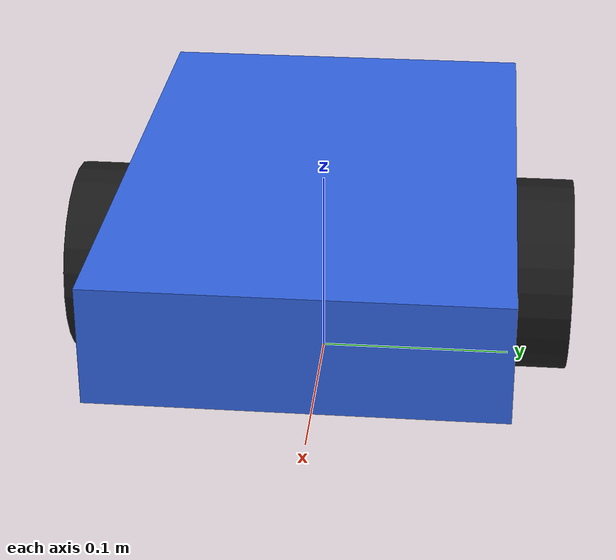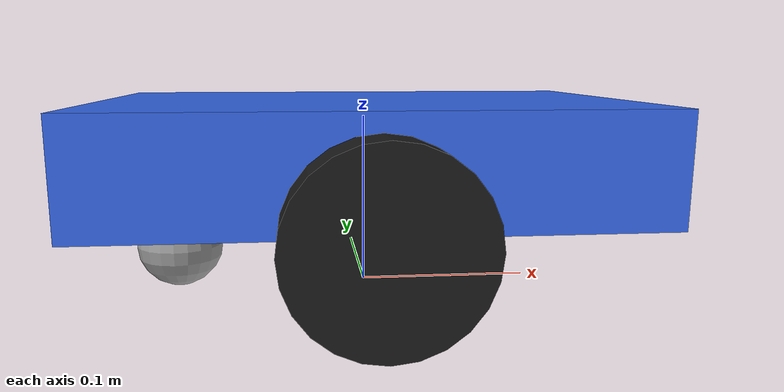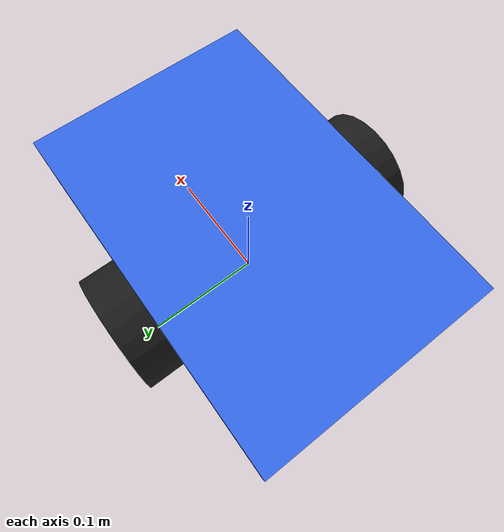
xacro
<?xml version="1.0"?>
<robot name="swarm_bot" xmlns:xacro="http://www.ros.org/wiki/xacro">

  <xacro:property name="base_length" value="0.30"/>
  <xacro:property name="base_width" value="0.20"/>
  <xacro:property name="base_height" value="0.06"/>

  <xacro:property name="wheel_radius" value="0.05"/>
  <xacro:property name="wheel_width" value="0.03"/>
  <xacro:property name="wheel_y_offset" value="0.115"/>
  <xacro:property name="wheel_x_offset" value="0.0"/>

  <xacro:property name="caster_radius" value="0.025"/>
  <xacro:property name="caster_x_offset" value="-0.11"/>

  <material name="blue">
    <color rgba="0.2 0.4 0.9 1.0"/>
  </material>

  <material name="black">
    <color rgba="0.1 0.1 0.1 1.0"/>
  </material>

  <material name="gray">
    <color rgba="0.6 0.6 0.6 1.0"/>
  </material>

  <link name="base_footprint"/>

  <link name="base_link">
    <visual>
      <origin xyz="0 0 ${wheel_radius + base_height/2}" rpy="0 0 0"/>
      <geometry>
        <box size="${base_length} ${base_width} ${base_height}"/>
      </geometry>
      <material name="blue"/>
    </visual>
    <collision>
      <origin xyz="0 0 ${wheel_radius + base_height/2}" rpy="0 0 0"/>
      <geometry>
        <box size="${base_length} ${base_width} ${base_height}"/>
      </geometry>
    </collision>
    <inertial>
      <origin xyz="0 0 ${wheel_radius + base_height/2}" rpy="0 0 0"/>
      <mass value="2.0"/>
      <inertia ixx="0.02" ixy="0.0" ixz="0.0" iyy="0.03" iyz="0.0" izz="0.04"/>
    </inertial>
  </link>

  <joint name="base_footprint_joint" type="fixed">
    <parent link="base_footprint"/>
    <child link="base_link"/>
    <origin xyz="0 0 0" rpy="0 0 0"/>
  </joint>

  <link name="left_wheel">
    <visual>
      <origin xyz="0 0 0" rpy="1.5708 0 0"/>
      <geometry>
        <cylinder radius="${wheel_radius}" length="${wheel_width}"/>
      </geometry>
      <material name="black"/>
    </visual>
    <collision>
      <origin xyz="0 0 0" rpy="1.5708 0 0"/>
      <geometry>
        <cylinder radius="${wheel_radius}" length="${wheel_width}"/>
      </geometry>
    </collision>
    <inertial>
      <mass value="0.2"/>
      <inertia ixx="0.0005" ixy="0.0" ixz="0.0" iyy="0.0005" iyz="0.0" izz="0.0005"/>
    </inertial>
  </link>

  <link name="right_wheel">
    <visual>
      <origin xyz="0 0 0" rpy="1.5708 0 0"/>
      <geometry>
        <cylinder radius="${wheel_radius}" length="${wheel_width}"/>
      </geometry>
      <material name="black"/>
    </visual>
    <collision>
      <origin xyz="0 0 0" rpy="1.5708 0 0"/>
      <geometry>
        <cylinder radius="${wheel_radius}" length="${wheel_width}"/>
      </geometry>
    </collision>
    <inertial>
      <mass value="0.2"/>
      <inertia ixx="0.0005" ixy="0.0" ixz="0.0" iyy="0.0005" iyz="0.0" izz="0.0005"/>
    </inertial>
  </link>

  <joint name="left_wheel_joint" type="continuous">
    <parent link="base_link"/>
    <child link="left_wheel"/>
    <origin xyz="${wheel_x_offset} ${wheel_y_offset} ${wheel_radius}" rpy="0 0 0"/>
    <axis xyz="0 1 0"/>
  </joint>

  <joint name="right_wheel_joint" type="continuous">
    <parent link="base_link"/>
    <child link="right_wheel"/>
    <origin xyz="${wheel_x_offset} -${wheel_y_offset} ${wheel_radius}" rpy="0 0 0"/>
    <axis xyz="0 1 0"/>
  </joint>

  <link name="rear_caster">
    <visual>
      <origin xyz="0 0 0" rpy="0 0 0"/>
      <geometry>
        <sphere radius="${caster_radius}"/>
      </geometry>
      <material name="gray"/>
    </visual>
    <collision>
      <origin xyz="0 0 0" rpy="0 0 0"/>
      <geometry>
        <sphere radius="${caster_radius}"/>
      </geometry>
    </collision>
    <inertial>
      <mass value="0.05"/>
      <inertia ixx="0.0001" ixy="0.0" ixz="0.0" iyy="0.0001" iyz="0.0" izz="0.0001"/>
    </inertial>
  </link>

  <joint name="rear_caster_joint" type="fixed">
    <parent link="base_link"/>
    <child link="rear_caster"/>
    <origin xyz="${caster_x_offset} 0 ${caster_radius}" rpy="0 0 0"/>
  </joint>

  <gazebo>
    <plugin filename="gz-sim-diff-drive-system" name="gz::sim::systems::DiffDrive">
      <left_joint>left_wheel_joint</left_joint>
      <right_joint>right_wheel_joint</right_joint>
      <wheel_separation>${2.0 * wheel_y_offset}</wheel_separation>
      <wheel_radius>${wheel_radius}</wheel_radius>
      <max_linear_acceleration>1.0</max_linear_acceleration>
      <max_angular_acceleration>2.0</max_angular_acceleration>
      <odom_topic>odom</odom_topic>
      <tf_topic>tf</tf_topic>
      <frame_id>odom</frame_id>
      <child_frame_id>base_footprint</child_frame_id>
    </plugin>

    <plugin filename="gz-sim-joint-state-publisher-system" name="gz::sim::systems::JointStatePublisher"/>
  </gazebo>

</robot>
